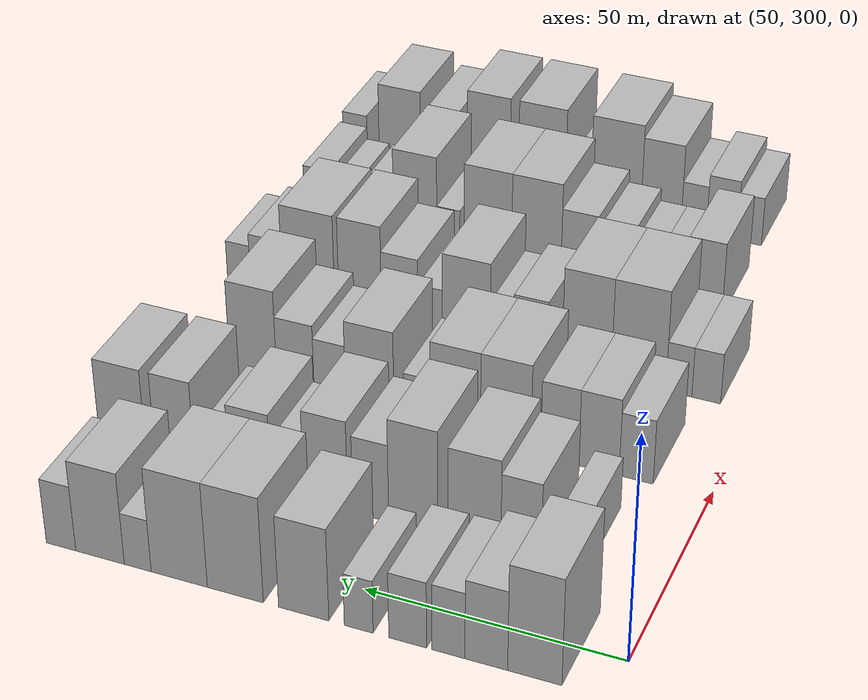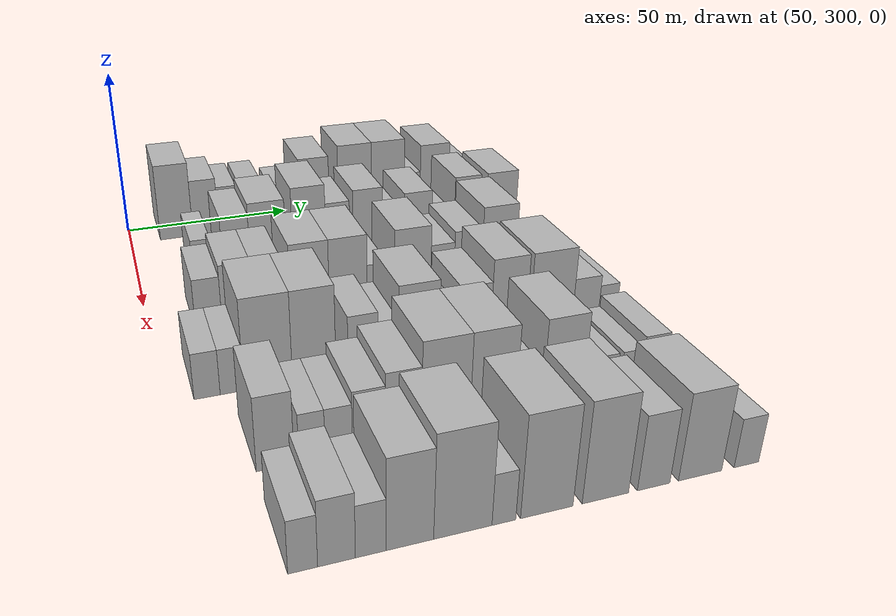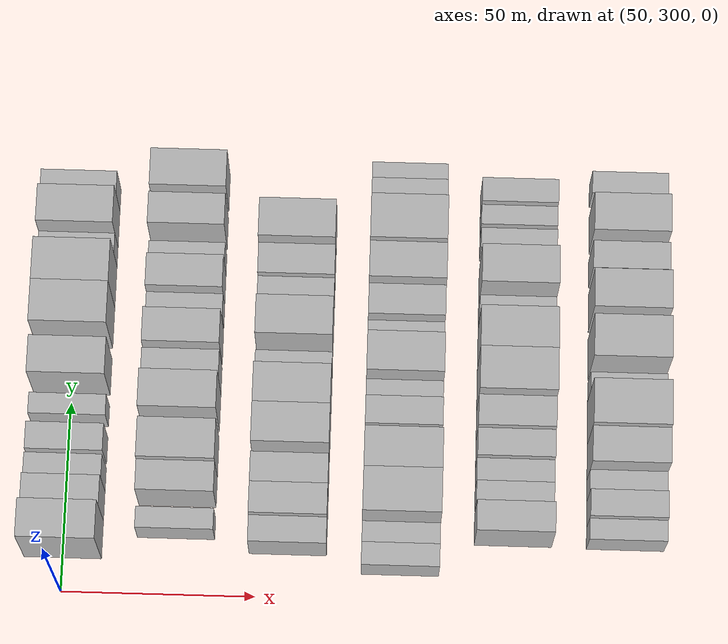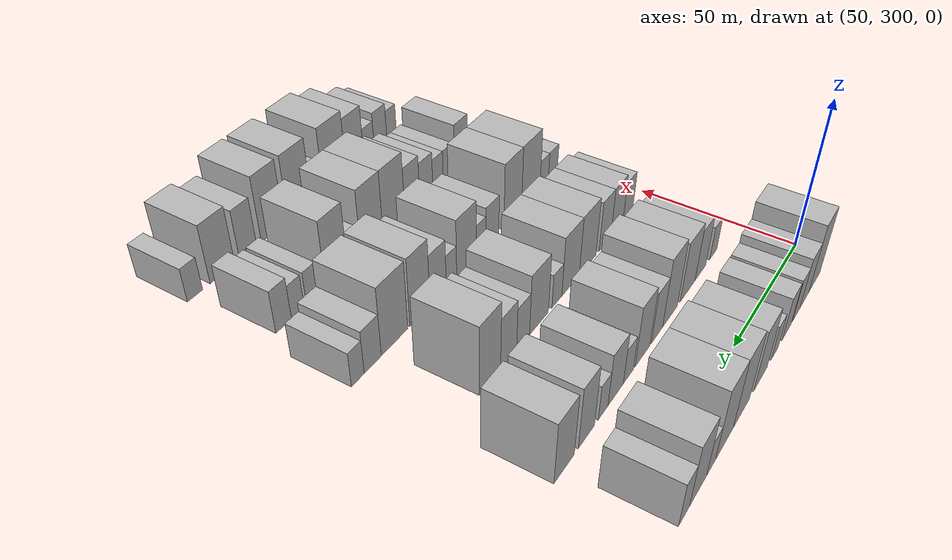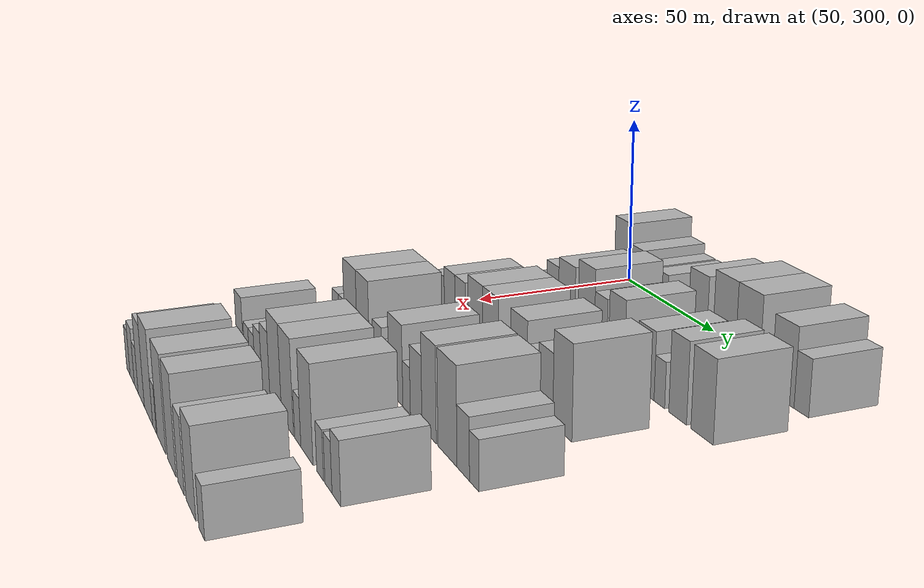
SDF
<sdf version="1.6">
 <world name="default">
  <model name="building_85">
   <static>1</static>
   <pose>50.0000 313.7733 0 0.000000 0.000000 0.000000</pose>
   <link name="link">
    <pose>0 0 12.00 0 0 0</pose>
    <collision name="collision"><geometry><box><size>20.0000 9.9659 24.0000</size></box></geometry></collision>
    <visual name="visual">
     <cast_shadows>0</cast_shadows>
     <geometry><box><size>20.0000 9.9659 24.0000</size></box></geometry>
     <material>
      <script>
       <uri>model://HANNAS_wall/materials/scripts</uri>
       <uri>model://HANNAS_wall/materials/textures</uri>
       <name>vrc/HANNAS_wall</name>
      </script>
     </material>
    </visual>
   </link>
  </model>
  <model name="building_86">
   <static>1</static>
   <pose>50.0000 322.7219 0 0.000000 0.000000 0.000000</pose>
   <link name="link">
    <pose>0 0 9.00 0 0 0</pose>
    <collision name="collision"><geometry><box><size>20.0000 7.9313 18.0000</size></box></geometry></collision>
    <visual name="visual">
     <cast_shadows>0</cast_shadows>
     <geometry><box><size>20.0000 7.9313 18.0000</size></box></geometry>
     <material>
      <script>
       <uri>model://HANNAS_wall/materials/scripts</uri>
       <uri>model://HANNAS_wall/materials/textures</uri>
       <name>vrc/HANNAS_wall</name>
      </script>
     </material>
    </visual>
   </link>
  </model>
  <model name="building_87">
   <static>1</static>
   <pose>50.0000 329.7921 0 0.000000 0.000000 0.000000</pose>
   <link name="link">
    <pose>0 0 7.50 0 0 0</pose>
    <collision name="collision"><geometry><box><size>20.0000 6.2091 15.0000</size></box></geometry></collision>
    <visual name="visual">
     <cast_shadows>0</cast_shadows>
     <geometry><box><size>20.0000 6.2091 15.0000</size></box></geometry>
     <material>
      <script>
       <uri>model://HANNAS_wall/materials/scripts</uri>
       <uri>model://HANNAS_wall/materials/textures</uri>
       <name>vrc/HANNAS_wall</name>
      </script>
     </material>
    </visual>
   </link>
  </model>
  <model name="building_88">
   <static>1</static>
   <pose>50.0000 337.4828 0 0.000000 0.000000 0.000000</pose>
   <link name="link">
    <pose>0 0 7.50 0 0 0</pose>
    <collision name="collision"><geometry><box><size>20.0000 7.1724 15.0000</size></box></geometry></collision>
    <visual name="visual">
     <cast_shadows>0</cast_shadows>
     <geometry><box><size>20.0000 7.1724 15.0000</size></box></geometry>
     <material>
      <script>
       <uri>model://HANNAS_wall/materials/scripts</uri>
       <uri>model://HANNAS_wall/materials/textures</uri>
       <name>vrc/HANNAS_wall</name>
      </script>
     </material>
    </visual>
   </link>
  </model>
  <model name="building_89">
   <static>1</static>
   <pose>50.0000 346.8356 0 0.000000 0.000000 0.000000</pose>
   <link name="link">
    <pose>0 0 6.00 0 0 0</pose>
    <collision name="collision"><geometry><box><size>20.0000 5.5331 12.0000</size></box></geometry></collision>
    <visual name="visual">
     <cast_shadows>0</cast_shadows>
     <geometry><box><size>20.0000 5.5331 12.0000</size></box></geometry>
     <material>
      <script>
       <uri>model://HANNAS_wall/materials/scripts</uri>
       <uri>model://HANNAS_wall/materials/textures</uri>
       <name>vrc/HANNAS_wall</name>
      </script>
     </material>
    </visual>
   </link>
  </model>
  <model name="building_90">
   <static>1</static>
   <pose>50.0000 357.5108 0 0.000000 0.000000 0.000000</pose>
   <link name="link">
    <pose>0 0 10.50 0 0 0</pose>
    <collision name="collision"><geometry><box><size>20.0000 9.8174 21.0000</size></box></geometry></collision>
    <visual name="visual">
     <cast_shadows>0</cast_shadows>
     <geometry><box><size>20.0000 9.8174 21.0000</size></box></geometry>
     <material>
      <script>
       <uri>model://HANNAS_wall/materials/scripts</uri>
       <uri>model://HANNAS_wall/materials/textures</uri>
       <name>vrc/HANNAS_wall</name>
      </script>
     </material>
    </visual>
   </link>
  </model>
  <model name="building_91">
   <static>1</static>
   <pose>50.0000 370.9895 0 0.000000 0.000000 0.000000</pose>
   <link name="link">
    <pose>0 0 12.00 0 0 0</pose>
    <collision name="collision"><geometry><box><size>20.0000 11.1399 24.0000</size></box></geometry></collision>
    <visual name="visual">
     <cast_shadows>0</cast_shadows>
     <geometry><box><size>20.0000 11.1399 24.0000</size></box></geometry>
     <material>
      <script>
       <uri>model://HANNAS_wall/materials/scripts</uri>
       <uri>model://HANNAS_wall/materials/textures</uri>
       <name>vrc/HANNAS_wall</name>
      </script>
     </material>
    </visual>
   </link>
  </model>
  <model name="building_92">
   <static>1</static>
   <pose>50.0000 382.2414 0 0.000000 0.000000 0.000000</pose>
   <link name="link">
    <pose>0 0 12.00 0 0 0</pose>
    <collision name="collision"><geometry><box><size>20.0000 11.3639 24.0000</size></box></geometry></collision>
    <visual name="visual">
     <cast_shadows>0</cast_shadows>
     <geometry><box><size>20.0000 11.3639 24.0000</size></box></geometry>
     <material>
      <script>
       <uri>model://HANNAS_wall/materials/scripts</uri>
       <uri>model://HANNAS_wall/materials/textures</uri>
       <name>vrc/HANNAS_wall</name>
      </script>
     </material>
    </visual>
   </link>
  </model>
  <model name="building_93">
   <static>1</static>
   <pose>50.0000 390.6703 0 0.000000 0.000000 0.000000</pose>
   <link name="link">
    <pose>0 0 6.00 0 0 0</pose>
    <collision name="collision"><geometry><box><size>20.0000 5.4940 12.0000</size></box></geometry></collision>
    <visual name="visual">
     <cast_shadows>0</cast_shadows>
     <geometry><box><size>20.0000 5.4940 12.0000</size></box></geometry>
     <material>
      <script>
       <uri>model://HANNAS_wall/materials/scripts</uri>
       <uri>model://HANNAS_wall/materials/textures</uri>
       <name>vrc/HANNAS_wall</name>
      </script>
     </material>
    </visual>
   </link>
  </model>
  <model name="building_94">
   <static>1</static>
   <pose>50.0000 398.4351 0 0.000000 0.000000 0.000000</pose>
   <link name="link">
    <pose>0 0 10.50 0 0 0</pose>
    <collision name="collision"><geometry><box><size>20.0000 10.0357 21.0000</size></box></geometry></collision>
    <visual name="visual">
     <cast_shadows>0</cast_shadows>
     <geometry><box><size>20.0000 10.0357 21.0000</size></box></geometry>
     <material>
      <script>
       <uri>model://HANNAS_wall/materials/scripts</uri>
       <uri>model://HANNAS_wall/materials/textures</uri>
       <name>vrc/HANNAS_wall</name>
      </script>
     </material>
    </visual>
   </link>
  </model>
  <model name="building_95">
   <static>1</static>
   <pose>50.0000 406.5181 0 0.000000 0.000000 0.000000</pose>
   <link name="link">
    <pose>0 0 7.50 0 0 0</pose>
    <collision name="collision"><geometry><box><size>20.0000 6.1302 15.0000</size></box></geometry></collision>
    <visual name="visual">
     <cast_shadows>0</cast_shadows>
     <geometry><box><size>20.0000 6.1302 15.0000</size></box></geometry>
     <material>
      <script>
       <uri>model://HANNAS_wall/materials/scripts</uri>
       <uri>model://HANNAS_wall/materials/textures</uri>
       <name>vrc/HANNAS_wall</name>
      </script>
     </material>
    </visual>
   </link>
  </model>
  <model name="building_201">
   <static>1</static>
   <pose>79.0000 317.4911 0 0.000000 0.000000 0.000000</pose>
   <link name="link">
    <pose>0 0 6.00 0 0 0</pose>
    <collision name="collision"><geometry><box><size>20.0000 5.5257 12.0000</size></box></geometry></collision>
    <visual name="visual">
     <cast_shadows>0</cast_shadows>
     <geometry><box><size>20.0000 5.5257 12.0000</size></box></geometry>
     <material>
      <script>
       <uri>model://HANNAS_wall/materials/scripts</uri>
       <uri>model://HANNAS_wall/materials/textures</uri>
       <name>vrc/HANNAS_wall</name>
      </script>
     </material>
    </visual>
   </link>
  </model>
  <model name="building_202">
   <static>1</static>
   <pose>79.0000 327.2011 0 0.000000 0.000000 0.000000</pose>
   <link name="link">
    <pose>0 0 9.00 0 0 0</pose>
    <collision name="collision"><geometry><box><size>20.0000 7.8943 18.0000</size></box></geometry></collision>
    <visual name="visual">
     <cast_shadows>0</cast_shadows>
     <geometry><box><size>20.0000 7.8943 18.0000</size></box></geometry>
     <material>
      <script>
       <uri>model://HANNAS_wall/materials/scripts</uri>
       <uri>model://HANNAS_wall/materials/textures</uri>
       <name>vrc/HANNAS_wall</name>
      </script>
     </material>
    </visual>
   </link>
  </model>
  <model name="building_203">
   <static>1</static>
   <pose>79.0000 336.3801 0 0.000000 0.000000 0.000000</pose>
   <link name="link">
    <pose>0 0 10.50 0 0 0</pose>
    <collision name="collision"><geometry><box><size>20.0000 10.4638 21.0000</size></box></geometry></collision>
    <visual name="visual">
     <cast_shadows>0</cast_shadows>
     <geometry><box><size>20.0000 10.4638 21.0000</size></box></geometry>
     <material>
      <script>
       <uri>model://HANNAS_wall/materials/scripts</uri>
       <uri>model://HANNAS_wall/materials/textures</uri>
       <name>vrc/HANNAS_wall</name>
      </script>
     </material>
    </visual>
   </link>
  </model>
  <model name="building_204">
   <static>1</static>
   <pose>79.0000 348.5491 0 0.000000 0.000000 0.000000</pose>
   <link name="link">
    <pose>0 0 12.00 0 0 0</pose>
    <collision name="collision"><geometry><box><size>20.0000 9.8742 24.0000</size></box></geometry></collision>
    <visual name="visual">
     <cast_shadows>0</cast_shadows>
     <geometry><box><size>20.0000 9.8742 24.0000</size></box></geometry>
     <material>
      <script>
       <uri>model://HANNAS_wall/materials/scripts</uri>
       <uri>model://HANNAS_wall/materials/textures</uri>
       <name>vrc/HANNAS_wall</name>
      </script>
     </material>
    </visual>
   </link>
  </model>
  <model name="building_205">
   <static>1</static>
   <pose>79.0000 357.1215 0 0.000000 0.000000 0.000000</pose>
   <link name="link">
    <pose>0 0 9.00 0 0 0</pose>
    <collision name="collision"><geometry><box><size>20.0000 7.2706 18.0000</size></box></geometry></collision>
    <visual name="visual">
     <cast_shadows>0</cast_shadows>
     <geometry><box><size>20.0000 7.2706 18.0000</size></box></geometry>
     <material>
      <script>
       <uri>model://HANNAS_wall/materials/scripts</uri>
       <uri>model://HANNAS_wall/materials/textures</uri>
       <name>vrc/HANNAS_wall</name>
      </script>
     </material>
    </visual>
   </link>
  </model>
  <model name="building_206">
   <static>1</static>
   <pose>79.0000 366.2660 0 0.000000 0.000000 0.000000</pose>
   <link name="link">
    <pose>0 0 10.50 0 0 0</pose>
    <collision name="collision"><geometry><box><size>20.0000 9.0186 21.0000</size></box></geometry></collision>
    <visual name="visual">
     <cast_shadows>0</cast_shadows>
     <geometry><box><size>20.0000 9.0186 21.0000</size></box></geometry>
     <material>
      <script>
       <uri>model://HANNAS_wall/materials/scripts</uri>
       <uri>model://HANNAS_wall/materials/textures</uri>
       <name>vrc/HANNAS_wall</name>
      </script>
     </material>
    </visual>
   </link>
  </model>
  <model name="building_207">
   <static>1</static>
   <pose>79.0000 374.7082 0 0.000000 0.000000 0.000000</pose>
   <link name="link">
    <pose>0 0 6.00 0 0 0</pose>
    <collision name="collision"><geometry><box><size>20.0000 5.8657 12.0000</size></box></geometry></collision>
    <visual name="visual">
     <cast_shadows>0</cast_shadows>
     <geometry><box><size>20.0000 5.8657 12.0000</size></box></geometry>
     <material>
      <script>
       <uri>model://HANNAS_wall/materials/scripts</uri>
       <uri>model://HANNAS_wall/materials/textures</uri>
       <name>vrc/HANNAS_wall</name>
      </script>
     </material>
    </visual>
   </link>
  </model>
  <model name="building_208">
   <static>1</static>
   <pose>79.0000 382.0152 0 0.000000 0.000000 0.000000</pose>
   <link name="link">
    <pose>0 0 9.00 0 0 0</pose>
    <collision name="collision"><geometry><box><size>20.0000 8.7483 18.0000</size></box></geometry></collision>
    <visual name="visual">
     <cast_shadows>0</cast_shadows>
     <geometry><box><size>20.0000 8.7483 18.0000</size></box></geometry>
     <material>
      <script>
       <uri>model://HANNAS_wall/materials/scripts</uri>
       <uri>model://HANNAS_wall/materials/textures</uri>
       <name>vrc/HANNAS_wall</name>
      </script>
     </material>
    </visual>
   </link>
  </model>
  <model name="building_209">
   <static>1</static>
   <pose>79.0000 389.0328 0 0.000000 0.000000 0.000000</pose>
   <link name="link">
    <pose>0 0 6.00 0 0 0</pose>
    <collision name="collision"><geometry><box><size>20.0000 5.2871 12.0000</size></box></geometry></collision>
    <visual name="visual">
     <cast_shadows>0</cast_shadows>
     <geometry><box><size>20.0000 5.2871 12.0000</size></box></geometry>
     <material>
      <script>
       <uri>model://HANNAS_wall/materials/scripts</uri>
       <uri>model://HANNAS_wall/materials/textures</uri>
       <name>vrc/HANNAS_wall</name>
      </script>
     </material>
    </visual>
   </link>
  </model>
  <model name="building_210">
   <static>1</static>
   <pose>79.0000 397.9119 0 0.000000 0.000000 0.000000</pose>
   <link name="link">
    <pose>0 0 10.50 0 0 0</pose>
    <collision name="collision"><geometry><box><size>20.0000 8.4711 21.0000</size></box></geometry></collision>
    <visual name="visual">
     <cast_shadows>0</cast_shadows>
     <geometry><box><size>20.0000 8.4711 21.0000</size></box></geometry>
     <material>
      <script>
       <uri>model://HANNAS_wall/materials/scripts</uri>
       <uri>model://HANNAS_wall/materials/textures</uri>
       <name>vrc/HANNAS_wall</name>
      </script>
     </material>
    </visual>
   </link>
  </model>
  <model name="building_211">
   <static>1</static>
   <pose>79.0000 409.1564 0 0.000000 0.000000 0.000000</pose>
   <link name="link">
    <pose>0 0 10.50 0 0 0</pose>
    <collision name="collision"><geometry><box><size>20.0000 10.0179 21.0000</size></box></geometry></collision>
    <visual name="visual">
     <cast_shadows>0</cast_shadows>
     <geometry><box><size>20.0000 10.0179 21.0000</size></box></geometry>
     <material>
      <script>
       <uri>model://HANNAS_wall/materials/scripts</uri>
       <uri>model://HANNAS_wall/materials/textures</uri>
       <name>vrc/HANNAS_wall</name>
      </script>
     </material>
    </visual>
   </link>
  </model>
  <model name="building_309">
   <static>1</static>
   <pose>108.0000 314.7132 0 0.000000 0.000000 0.000000</pose>
   <link name="link">
    <pose>0 0 7.50 0 0 0</pose>
    <collision name="collision"><geometry><box><size>20.0000 6.8224 15.0000</size></box></geometry></collision>
    <visual name="visual">
     <cast_shadows>0</cast_shadows>
     <geometry><box><size>20.0000 6.8224 15.0000</size></box></geometry>
     <material>
      <script>
       <uri>model://HANNAS_wall/materials/scripts</uri>
       <uri>model://HANNAS_wall/materials/textures</uri>
       <name>vrc/HANNAS_wall</name>
      </script>
     </material>
    </visual>
   </link>
  </model>
  <model name="building_310">
   <static>1</static>
   <pose>108.0000 322.2044 0 0.000000 0.000000 0.000000</pose>
   <link name="link">
    <pose>0 0 9.00 0 0 0</pose>
    <collision name="collision"><geometry><box><size>20.0000 8.1599 18.0000</size></box></geometry></collision>
    <visual name="visual">
     <cast_shadows>0</cast_shadows>
     <geometry><box><size>20.0000 8.1599 18.0000</size></box></geometry>
     <material>
      <script>
       <uri>model://HANNAS_wall/materials/scripts</uri>
       <uri>model://HANNAS_wall/materials/textures</uri>
       <name>vrc/HANNAS_wall</name>
      </script>
     </material>
    </visual>
   </link>
  </model>
  <model name="building_311">
   <static>1</static>
   <pose>108.0000 330.1767 0 0.000000 0.000000 0.000000</pose>
   <link name="link">
    <pose>0 0 9.00 0 0 0</pose>
    <collision name="collision"><geometry><box><size>20.0000 7.7847 18.0000</size></box></geometry></collision>
    <visual name="visual">
     <cast_shadows>0</cast_shadows>
     <geometry><box><size>20.0000 7.7847 18.0000</size></box></geometry>
     <material>
      <script>
       <uri>model://HANNAS_wall/materials/scripts</uri>
       <uri>model://HANNAS_wall/materials/textures</uri>
       <name>vrc/HANNAS_wall</name>
      </script>
     </material>
    </visual>
   </link>
  </model>
  <model name="building_312">
   <static>1</static>
   <pose>108.0000 341.3030 0 0.000000 0.000000 0.000000</pose>
   <link name="link">
    <pose>0 0 10.50 0 0 0</pose>
    <collision name="collision"><geometry><box><size>20.0000 10.4679 21.0000</size></box></geometry></collision>
    <visual name="visual">
     <cast_shadows>0</cast_shadows>
     <geometry><box><size>20.0000 10.4679 21.0000</size></box></geometry>
     <material>
      <script>
       <uri>model://HANNAS_wall/materials/scripts</uri>
       <uri>model://HANNAS_wall/materials/textures</uri>
       <name>vrc/HANNAS_wall</name>
      </script>
     </material>
    </visual>
   </link>
  </model>
  <model name="building_313">
   <static>1</static>
   <pose>108.0000 351.7706 0 0.000000 0.000000 0.000000</pose>
   <link name="link">
    <pose>0 0 10.50 0 0 0</pose>
    <collision name="collision"><geometry><box><size>20.0000 10.4673 21.0000</size></box></geometry></collision>
    <visual name="visual">
     <cast_shadows>0</cast_shadows>
     <geometry><box><size>20.0000 10.4673 21.0000</size></box></geometry>
     <material>
      <script>
       <uri>model://HANNAS_wall/materials/scripts</uri>
       <uri>model://HANNAS_wall/materials/textures</uri>
       <name>vrc/HANNAS_wall</name>
      </script>
     </material>
    </visual>
   </link>
  </model>
  <model name="building_314">
   <static>1</static>
   <pose>108.0000 359.8651 0 0.000000 0.000000 0.000000</pose>
   <link name="link">
    <pose>0 0 6.00 0 0 0</pose>
    <collision name="collision"><geometry><box><size>20.0000 5.7216 12.0000</size></box></geometry></collision>
    <visual name="visual">
     <cast_shadows>0</cast_shadows>
     <geometry><box><size>20.0000 5.7216 12.0000</size></box></geometry>
     <material>
      <script>
       <uri>model://HANNAS_wall/materials/scripts</uri>
       <uri>model://HANNAS_wall/materials/textures</uri>
       <name>vrc/HANNAS_wall</name>
      </script>
     </material>
    </visual>
   </link>
  </model>
  <model name="building_315">
   <static>1</static>
   <pose>108.0000 369.9059 0 0.000000 0.000000 0.000000</pose>
   <link name="link">
    <pose>0 0 10.50 0 0 0</pose>
    <collision name="collision"><geometry><box><size>20.0000 10.3601 21.0000</size></box></geometry></collision>
    <visual name="visual">
     <cast_shadows>0</cast_shadows>
     <geometry><box><size>20.0000 10.3601 21.0000</size></box></geometry>
     <material>
      <script>
       <uri>model://HANNAS_wall/materials/scripts</uri>
       <uri>model://HANNAS_wall/materials/textures</uri>
       <name>vrc/HANNAS_wall</name>
      </script>
     </material>
    </visual>
   </link>
  </model>
  <model name="building_316">
   <static>1</static>
   <pose>108.0000 378.4851 0 0.000000 0.000000 0.000000</pose>
   <link name="link">
    <pose>0 0 7.50 0 0 0</pose>
    <collision name="collision"><geometry><box><size>20.0000 6.7984 15.0000</size></box></geometry></collision>
    <visual name="visual">
     <cast_shadows>0</cast_shadows>
     <geometry><box><size>20.0000 6.7984 15.0000</size></box></geometry>
     <material>
      <script>
       <uri>model://HANNAS_wall/materials/scripts</uri>
       <uri>model://HANNAS_wall/materials/textures</uri>
       <name>vrc/HANNAS_wall</name>
      </script>
     </material>
    </visual>
   </link>
  </model>
  <model name="building_317">
   <static>1</static>
   <pose>108.0000 385.9615 0 0.000000 0.000000 0.000000</pose>
   <link name="link">
    <pose>0 0 9.00 0 0 0</pose>
    <collision name="collision"><geometry><box><size>20.0000 8.1544 18.0000</size></box></geometry></collision>
    <visual name="visual">
     <cast_shadows>0</cast_shadows>
     <geometry><box><size>20.0000 8.1544 18.0000</size></box></geometry>
     <material>
      <script>
       <uri>model://HANNAS_wall/materials/scripts</uri>
       <uri>model://HANNAS_wall/materials/textures</uri>
       <name>vrc/HANNAS_wall</name>
      </script>
     </material>
    </visual>
   </link>
  </model>
  <model name="building_318">
   <static>1</static>
   <pose>108.0000 395.2019 0 0.000000 0.000000 0.000000</pose>
   <link name="link">
    <pose>0 0 12.00 0 0 0</pose>
    <collision name="collision"><geometry><box><size>20.0000 10.3264 24.0000</size></box></geometry></collision>
    <visual name="visual">
     <cast_shadows>0</cast_shadows>
     <geometry><box><size>20.0000 10.3264 24.0000</size></box></geometry>
     <material>
      <script>
       <uri>model://HANNAS_wall/materials/scripts</uri>
       <uri>model://HANNAS_wall/materials/textures</uri>
       <name>vrc/HANNAS_wall</name>
      </script>
     </material>
    </visual>
   </link>
  </model>
  <model name="building_420">
   <static>1</static>
   <pose>137.0000 309.7142 0 0.000000 0.000000 0.000000</pose>
   <link name="link">
    <pose>0 0 6.00 0 0 0</pose>
    <collision name="collision"><geometry><box><size>20.0000 5.9707 12.0000</size></box></geometry></collision>
    <visual name="visual">
     <cast_shadows>0</cast_shadows>
     <geometry><box><size>20.0000 5.9707 12.0000</size></box></geometry>
     <material>
      <script>
       <uri>model://HANNAS_wall/materials/scripts</uri>
       <uri>model://HANNAS_wall/materials/textures</uri>
       <name>vrc/HANNAS_wall</name>
      </script>
     </material>
    </visual>
   </link>
  </model>
  <model name="building_421">
   <static>1</static>
   <pose>137.0000 315.4198 0 0.000000 0.000000 0.000000</pose>
   <link name="link">
    <pose>0 0 6.00 0 0 0</pose>
    <collision name="collision"><geometry><box><size>20.0000 5.4404 12.0000</size></box></geometry></collision>
    <visual name="visual">
     <cast_shadows>0</cast_shadows>
     <geometry><box><size>20.0000 5.4404 12.0000</size></box></geometry>
     <material>
      <script>
       <uri>model://HANNAS_wall/materials/scripts</uri>
       <uri>model://HANNAS_wall/materials/textures</uri>
       <name>vrc/HANNAS_wall</name>
      </script>
     </material>
    </visual>
   </link>
  </model>
  <model name="building_422">
   <static>1</static>
   <pose>137.0000 323.8924 0 0.000000 0.000000 0.000000</pose>
   <link name="link">
    <pose>0 0 12.00 0 0 0</pose>
    <collision name="collision"><geometry><box><size>20.0000 11.5048 24.0000</size></box></geometry></collision>
    <visual name="visual">
     <cast_shadows>0</cast_shadows>
     <geometry><box><size>20.0000 11.5048 24.0000</size></box></geometry>
     <material>
      <script>
       <uri>model://HANNAS_wall/materials/scripts</uri>
       <uri>model://HANNAS_wall/materials/textures</uri>
       <name>vrc/HANNAS_wall</name>
      </script>
     </material>
    </visual>
   </link>
  </model>
  <model name="building_423">
   <static>1</static>
   <pose>137.0000 334.9140 0 0.000000 0.000000 0.000000</pose>
   <link name="link">
    <pose>0 0 12.00 0 0 0</pose>
    <collision name="collision"><geometry><box><size>20.0000 10.5384 24.0000</size></box></geometry></collision>
    <visual name="visual">
     <cast_shadows>0</cast_shadows>
     <geometry><box><size>20.0000 10.5384 24.0000</size></box></geometry>
     <material>
      <script>
       <uri>model://HANNAS_wall/materials/scripts</uri>
       <uri>model://HANNAS_wall/materials/textures</uri>
       <name>vrc/HANNAS_wall</name>
      </script>
     </material>
    </visual>
   </link>
  </model>
  <model name="building_424">
   <static>1</static>
   <pose>137.0000 346.9109 0 0.000000 0.000000 0.000000</pose>
   <link name="link">
    <pose>0 0 7.50 0 0 0</pose>
    <collision name="collision"><geometry><box><size>20.0000 7.4554 15.0000</size></box></geometry></collision>
    <visual name="visual">
     <cast_shadows>0</cast_shadows>
     <geometry><box><size>20.0000 7.4554 15.0000</size></box></geometry>
     <material>
      <script>
       <uri>model://HANNAS_wall/materials/scripts</uri>
       <uri>model://HANNAS_wall/materials/textures</uri>
       <name>vrc/HANNAS_wall</name>
      </script>
     </material>
    </visual>
   </link>
  </model>
  <model name="building_425">
   <static>1</static>
   <pose>137.0000 353.1987 0 0.000000 0.000000 0.000000</pose>
   <link name="link">
    <pose>0 0 6.00 0 0 0</pose>
    <collision name="collision"><geometry><box><size>20.0000 5.1203 12.0000</size></box></geometry></collision>
    <visual name="visual">
     <cast_shadows>0</cast_shadows>
     <geometry><box><size>20.0000 5.1203 12.0000</size></box></geometry>
     <material>
      <script>
       <uri>model://HANNAS_wall/materials/scripts</uri>
       <uri>model://HANNAS_wall/materials/textures</uri>
       <name>vrc/HANNAS_wall</name>
      </script>
     </material>
    </visual>
   </link>
  </model>
  <model name="building_426">
   <static>1</static>
   <pose>137.0000 361.0071 0 0.000000 0.000000 0.000000</pose>
   <link name="link">
    <pose>0 0 10.50 0 0 0</pose>
    <collision name="collision"><geometry><box><size>20.0000 10.4965 21.0000</size></box></geometry></collision>
    <visual name="visual">
     <cast_shadows>0</cast_shadows>
     <geometry><box><size>20.0000 10.4965 21.0000</size></box></geometry>
     <material>
      <script>
       <uri>model://HANNAS_wall/materials/scripts</uri>
       <uri>model://HANNAS_wall/materials/textures</uri>
       <name>vrc/HANNAS_wall</name>
      </script>
     </material>
    </visual>
   </link>
  </model>
  <model name="building_427">
   <static>1</static>
   <pose>137.0000 368.9597 0 0.000000 0.000000 0.000000</pose>
   <link name="link">
    <pose>0 0 6.00 0 0 0</pose>
    <collision name="collision"><geometry><box><size>20.0000 5.4088 12.0000</size></box></geometry></collision>
    <visual name="visual">
     <cast_shadows>0</cast_shadows>
     <geometry><box><size>20.0000 5.4088 12.0000</size></box></geometry>
     <material>
      <script>
       <uri>model://HANNAS_wall/materials/scripts</uri>
       <uri>model://HANNAS_wall/materials/textures</uri>
       <name>vrc/HANNAS_wall</name>
      </script>
     </material>
    </visual>
   </link>
  </model>
  <model name="building_428">
   <static>1</static>
   <pose>137.0000 375.7532 0 0.000000 0.000000 0.000000</pose>
   <link name="link">
    <pose>0 0 9.00 0 0 0</pose>
    <collision name="collision"><geometry><box><size>20.0000 8.1783 18.0000</size></box></geometry></collision>
    <visual name="visual">
     <cast_shadows>0</cast_shadows>
     <geometry><box><size>20.0000 8.1783 18.0000</size></box></geometry>
     <material>
      <script>
       <uri>model://HANNAS_wall/materials/scripts</uri>
       <uri>model://HANNAS_wall/materials/textures</uri>
       <name>vrc/HANNAS_wall</name>
      </script>
     </material>
    </visual>
   </link>
  </model>
  <model name="building_429">
   <static>1</static>
   <pose>137.0000 384.6444 0 0.000000 0.000000 0.000000</pose>
   <link name="link">
    <pose>0 0 12.00 0 0 0</pose>
    <collision name="collision"><geometry><box><size>20.0000 9.6041 24.0000</size></box></geometry></collision>
    <visual name="visual">
     <cast_shadows>0</cast_shadows>
     <geometry><box><size>20.0000 9.6041 24.0000</size></box></geometry>
     <material>
      <script>
       <uri>model://HANNAS_wall/materials/scripts</uri>
       <uri>model://HANNAS_wall/materials/textures</uri>
       <name>vrc/HANNAS_wall</name>
      </script>
     </material>
    </visual>
   </link>
  </model>
  <model name="building_430">
   <static>1</static>
   <pose>137.0000 396.4324 0 0.000000 0.000000 0.000000</pose>
   <link name="link">
    <pose>0 0 12.00 0 0 0</pose>
    <collision name="collision"><geometry><box><size>20.0000 11.9718 24.0000</size></box></geometry></collision>
    <visual name="visual">
     <cast_shadows>0</cast_shadows>
     <geometry><box><size>20.0000 11.9718 24.0000</size></box></geometry>
     <material>
      <script>
       <uri>model://HANNAS_wall/materials/scripts</uri>
       <uri>model://HANNAS_wall/materials/textures</uri>
       <name>vrc/HANNAS_wall</name>
      </script>
     </material>
    </visual>
   </link>
  </model>
  <model name="building_431">
   <static>1</static>
   <pose>137.0000 406.1362 0 0.000000 0.000000 0.000000</pose>
   <link name="link">
    <pose>0 0 7.50 0 0 0</pose>
    <collision name="collision"><geometry><box><size>20.0000 7.4359 15.0000</size></box></geometry></collision>
    <visual name="visual">
     <cast_shadows>0</cast_shadows>
     <geometry><box><size>20.0000 7.4359 15.0000</size></box></geometry>
     <material>
      <script>
       <uri>model://HANNAS_wall/materials/scripts</uri>
       <uri>model://HANNAS_wall/materials/textures</uri>
       <name>vrc/HANNAS_wall</name>
      </script>
     </material>
    </visual>
   </link>
  </model>
  <model name="building_432">
   <static>1</static>
   <pose>137.0000 412.5391 0 0.000000 0.000000 0.000000</pose>
   <link name="link">
    <pose>0 0 6.00 0 0 0</pose>
    <collision name="collision"><geometry><box><size>20.0000 5.3698 12.0000</size></box></geometry></collision>
    <visual name="visual">
     <cast_shadows>0</cast_shadows>
     <geometry><box><size>20.0000 5.3698 12.0000</size></box></geometry>
     <material>
      <script>
       <uri>model://HANNAS_wall/materials/scripts</uri>
       <uri>model://HANNAS_wall/materials/textures</uri>
       <name>vrc/HANNAS_wall</name>
      </script>
     </material>
    </visual>
   </link>
  </model>
  <model name="building_541">
   <static>1</static>
   <pose>166.0000 319.1756 0 0.000000 0.000000 0.000000</pose>
   <link name="link">
    <pose>0 0 9.00 0 0 0</pose>
    <collision name="collision"><geometry><box><size>20.0000 7.9047 18.0000</size></box></geometry></collision>
    <visual name="visual">
     <cast_shadows>0</cast_shadows>
     <geometry><box><size>20.0000 7.9047 18.0000</size></box></geometry>
     <material>
      <script>
       <uri>model://HANNAS_wall/materials/scripts</uri>
       <uri>model://HANNAS_wall/materials/textures</uri>
       <name>vrc/HANNAS_wall</name>
      </script>
     </material>
    </visual>
   </link>
  </model>
  <model name="building_542">
   <static>1</static>
   <pose>166.0000 326.9095 0 0.000000 0.000000 0.000000</pose>
   <link name="link">
    <pose>0 0 6.00 0 0 0</pose>
    <collision name="collision"><geometry><box><size>20.0000 5.5630 12.0000</size></box></geometry></collision>
    <visual name="visual">
     <cast_shadows>0</cast_shadows>
     <geometry><box><size>20.0000 5.5630 12.0000</size></box></geometry>
     <material>
      <script>
       <uri>model://HANNAS_wall/materials/scripts</uri>
       <uri>model://HANNAS_wall/materials/textures</uri>
       <name>vrc/HANNAS_wall</name>
      </script>
     </material>
    </visual>
   </link>
  </model>
  <model name="building_543">
   <static>1</static>
   <pose>166.0000 332.6408 0 0.000000 0.000000 0.000000</pose>
   <link name="link">
    <pose>0 0 6.00 0 0 0</pose>
    <collision name="collision"><geometry><box><size>20.0000 5.8997 12.0000</size></box></geometry></collision>
    <visual name="visual">
     <cast_shadows>0</cast_shadows>
     <geometry><box><size>20.0000 5.8997 12.0000</size></box></geometry>
     <material>
      <script>
       <uri>model://HANNAS_wall/materials/scripts</uri>
       <uri>model://HANNAS_wall/materials/textures</uri>
       <name>vrc/HANNAS_wall</name>
      </script>
     </material>
    </visual>
   </link>
  </model>
  <model name="building_544">
   <static>1</static>
   <pose>166.0000 339.2122 0 0.000000 0.000000 0.000000</pose>
   <link name="link">
    <pose>0 0 7.50 0 0 0</pose>
    <collision name="collision"><geometry><box><size>20.0000 7.2430 15.0000</size></box></geometry></collision>
    <visual name="visual">
     <cast_shadows>0</cast_shadows>
     <geometry><box><size>20.0000 7.2430 15.0000</size></box></geometry>
     <material>
      <script>
       <uri>model://HANNAS_wall/materials/scripts</uri>
       <uri>model://HANNAS_wall/materials/textures</uri>
       <name>vrc/HANNAS_wall</name>
      </script>
     </material>
    </visual>
   </link>
  </model>
  <model name="building_545">
   <static>1</static>
   <pose>166.0000 346.8603 0 0.000000 0.000000 0.000000</pose>
   <link name="link">
    <pose>0 0 9.00 0 0 0</pose>
    <collision name="collision"><geometry><box><size>20.0000 8.0533 18.0000</size></box></geometry></collision>
    <visual name="visual">
     <cast_shadows>0</cast_shadows>
     <geometry><box><size>20.0000 8.0533 18.0000</size></box></geometry>
     <material>
      <script>
       <uri>model://HANNAS_wall/materials/scripts</uri>
       <uri>model://HANNAS_wall/materials/textures</uri>
       <name>vrc/HANNAS_wall</name>
      </script>
     </material>
    </visual>
   </link>
  </model>
  <model name="building_546">
   <static>1</static>
   <pose>166.0000 356.5032 0 0.000000 0.000000 0.000000</pose>
   <link name="link">
    <pose>0 0 12.00 0 0 0</pose>
    <collision name="collision"><geometry><box><size>20.0000 11.2326 24.0000</size></box></geometry></collision>
    <visual name="visual">
     <cast_shadows>0</cast_shadows>
     <geometry><box><size>20.0000 11.2326 24.0000</size></box></geometry>
     <material>
      <script>
       <uri>model://HANNAS_wall/materials/scripts</uri>
       <uri>model://HANNAS_wall/materials/textures</uri>
       <name>vrc/HANNAS_wall</name>
      </script>
     </material>
    </visual>
   </link>
  </model>
  <model name="building_547">
   <static>1</static>
   <pose>166.0000 367.5504 0 0.000000 0.000000 0.000000</pose>
   <link name="link">
    <pose>0 0 12.00 0 0 0</pose>
    <collision name="collision"><geometry><box><size>20.0000 10.8618 24.0000</size></box></geometry></collision>
    <visual name="visual">
     <cast_shadows>0</cast_shadows>
     <geometry><box><size>20.0000 10.8618 24.0000</size></box></geometry>
     <material>
      <script>
       <uri>model://HANNAS_wall/materials/scripts</uri>
       <uri>model://HANNAS_wall/materials/textures</uri>
       <name>vrc/HANNAS_wall</name>
      </script>
     </material>
    </visual>
   </link>
  </model>
  <model name="building_548">
   <static>1</static>
   <pose>166.0000 376.6608 0 0.000000 0.000000 0.000000</pose>
   <link name="link">
    <pose>0 0 6.00 0 0 0</pose>
    <collision name="collision"><geometry><box><size>20.0000 5.3589 12.0000</size></box></geometry></collision>
    <visual name="visual">
     <cast_shadows>0</cast_shadows>
     <geometry><box><size>20.0000 5.3589 12.0000</size></box></geometry>
     <material>
      <script>
       <uri>model://HANNAS_wall/materials/scripts</uri>
       <uri>model://HANNAS_wall/materials/textures</uri>
       <name>vrc/HANNAS_wall</name>
      </script>
     </material>
    </visual>
   </link>
  </model>
  <model name="building_549">
   <static>1</static>
   <pose>166.0000 384.4036 0 0.000000 0.000000 0.000000</pose>
   <link name="link">
    <pose>0 0 12.00 0 0 0</pose>
    <collision name="collision"><geometry><box><size>20.0000 10.1269 24.0000</size></box></geometry></collision>
    <visual name="visual">
     <cast_shadows>0</cast_shadows>
     <geometry><box><size>20.0000 10.1269 24.0000</size></box></geometry>
     <material>
      <script>
       <uri>model://HANNAS_wall/materials/scripts</uri>
       <uri>model://HANNAS_wall/materials/textures</uri>
       <name>vrc/HANNAS_wall</name>
      </script>
     </material>
    </visual>
   </link>
  </model>
  <model name="building_550">
   <static>1</static>
   <pose>166.0000 395.1559 0 0.000000 0.000000 0.000000</pose>
   <link name="link">
    <pose>0 0 6.00 0 0 0</pose>
    <collision name="collision"><geometry><box><size>20.0000 5.3776 12.0000</size></box></geometry></collision>
    <visual name="visual">
     <cast_shadows>0</cast_shadows>
     <geometry><box><size>20.0000 5.3776 12.0000</size></box></geometry>
     <material>
      <script>
       <uri>model://HANNAS_wall/materials/scripts</uri>
       <uri>model://HANNAS_wall/materials/textures</uri>
       <name>vrc/HANNAS_wall</name>
      </script>
     </material>
    </visual>
   </link>
  </model>
  <model name="building_551">
   <static>1</static>
   <pose>166.0000 401.5388 0 0.000000 0.000000 0.000000</pose>
   <link name="link">
    <pose>0 0 6.00 0 0 0</pose>
    <collision name="collision"><geometry><box><size>20.0000 5.3882 12.0000</size></box></geometry></collision>
    <visual name="visual">
     <cast_shadows>0</cast_shadows>
     <geometry><box><size>20.0000 5.3882 12.0000</size></box></geometry>
     <material>
      <script>
       <uri>model://HANNAS_wall/materials/scripts</uri>
       <uri>model://HANNAS_wall/materials/textures</uri>
       <name>vrc/HANNAS_wall</name>
      </script>
     </material>
    </visual>
   </link>
  </model>
  <model name="building_552">
   <static>1</static>
   <pose>166.0000 407.4646 0 0.000000 0.000000 0.000000</pose>
   <link name="link">
    <pose>0 0 7.50 0 0 0</pose>
    <collision name="collision"><geometry><box><size>20.0000 6.4633 15.0000</size></box></geometry></collision>
    <visual name="visual">
     <cast_shadows>0</cast_shadows>
     <geometry><box><size>20.0000 6.4633 15.0000</size></box></geometry>
     <material>
      <script>
       <uri>model://HANNAS_wall/materials/scripts</uri>
       <uri>model://HANNAS_wall/materials/textures</uri>
       <name>vrc/HANNAS_wall</name>
      </script>
     </material>
    </visual>
   </link>
  </model>
  <model name="building_655">
   <static>1</static>
   <pose>195.0000 317.7595 0 0.000000 0.000000 0.000000</pose>
   <link name="link">
    <pose>0 0 6.00 0 0 0</pose>
    <collision name="collision"><geometry><box><size>20.0000 5.4748 12.0000</size></box></geometry></collision>
    <visual name="visual">
     <cast_shadows>0</cast_shadows>
     <geometry><box><size>20.0000 5.4748 12.0000</size></box></geometry>
     <material>
      <script>
       <uri>model://HANNAS_wall/materials/scripts</uri>
       <uri>model://HANNAS_wall/materials/textures</uri>
       <name>vrc/HANNAS_wall</name>
      </script>
     </material>
    </visual>
   </link>
  </model>
  <model name="building_656">
   <static>1</static>
   <pose>195.0000 324.0054 0 0.000000 0.000000 0.000000</pose>
   <link name="link">
    <pose>0 0 7.50 0 0 0</pose>
    <collision name="collision"><geometry><box><size>20.0000 7.0169 15.0000</size></box></geometry></collision>
    <visual name="visual">
     <cast_shadows>0</cast_shadows>
     <geometry><box><size>20.0000 7.0169 15.0000</size></box></geometry>
     <material>
      <script>
       <uri>model://HANNAS_wall/materials/scripts</uri>
       <uri>model://HANNAS_wall/materials/textures</uri>
       <name>vrc/HANNAS_wall</name>
      </script>
     </material>
    </visual>
   </link>
  </model>
  <model name="building_657">
   <static>1</static>
   <pose>195.0000 330.4174 0 0.000000 0.000000 0.000000</pose>
   <link name="link">
    <pose>0 0 6.00 0 0 0</pose>
    <collision name="collision"><geometry><box><size>20.0000 5.8071 12.0000</size></box></geometry></collision>
    <visual name="visual">
     <cast_shadows>0</cast_shadows>
     <geometry><box><size>20.0000 5.8071 12.0000</size></box></geometry>
     <material>
      <script>
       <uri>model://HANNAS_wall/materials/scripts</uri>
       <uri>model://HANNAS_wall/materials/textures</uri>
       <name>vrc/HANNAS_wall</name>
      </script>
     </material>
    </visual>
   </link>
  </model>
  <model name="building_658">
   <static>1</static>
   <pose>195.0000 337.9789 0 0.000000 0.000000 0.000000</pose>
   <link name="link">
    <pose>0 0 10.50 0 0 0</pose>
    <collision name="collision"><geometry><box><size>20.0000 9.3159 21.0000</size></box></geometry></collision>
    <visual name="visual">
     <cast_shadows>0</cast_shadows>
     <geometry><box><size>20.0000 9.3159 21.0000</size></box></geometry>
     <material>
      <script>
       <uri>model://HANNAS_wall/materials/scripts</uri>
       <uri>model://HANNAS_wall/materials/textures</uri>
       <name>vrc/HANNAS_wall</name>
      </script>
     </material>
    </visual>
   </link>
  </model>
  <model name="building_659">
   <static>1</static>
   <pose>195.0000 348.5192 0 0.000000 0.000000 0.000000</pose>
   <link name="link">
    <pose>0 0 12.00 0 0 0</pose>
    <collision name="collision"><geometry><box><size>20.0000 11.7645 24.0000</size></box></geometry></collision>
    <visual name="visual">
     <cast_shadows>0</cast_shadows>
     <geometry><box><size>20.0000 11.7645 24.0000</size></box></geometry>
     <material>
      <script>
       <uri>model://HANNAS_wall/materials/scripts</uri>
       <uri>model://HANNAS_wall/materials/textures</uri>
       <name>vrc/HANNAS_wall</name>
      </script>
     </material>
    </visual>
   </link>
  </model>
  <model name="building_660">
   <static>1</static>
   <pose>195.0000 356.8643 0 0.000000 0.000000 0.000000</pose>
   <link name="link">
    <pose>0 0 6.00 0 0 0</pose>
    <collision name="collision"><geometry><box><size>20.0000 4.9258 12.0000</size></box></geometry></collision>
    <visual name="visual">
     <cast_shadows>0</cast_shadows>
     <geometry><box><size>20.0000 4.9258 12.0000</size></box></geometry>
     <material>
      <script>
       <uri>model://HANNAS_wall/materials/scripts</uri>
       <uri>model://HANNAS_wall/materials/textures</uri>
       <name>vrc/HANNAS_wall</name>
      </script>
     </material>
    </visual>
   </link>
  </model>
  <model name="building_661">
   <static>1</static>
   <pose>195.0000 365.9051 0 0.000000 0.000000 0.000000</pose>
   <link name="link">
    <pose>0 0 12.00 0 0 0</pose>
    <collision name="collision"><geometry><box><size>20.0000 11.1558 24.0000</size></box></geometry></collision>
    <visual name="visual">
     <cast_shadows>0</cast_shadows>
     <geometry><box><size>20.0000 11.1558 24.0000</size></box></geometry>
     <material>
      <script>
       <uri>model://HANNAS_wall/materials/scripts</uri>
       <uri>model://HANNAS_wall/materials/textures</uri>
       <name>vrc/HANNAS_wall</name>
      </script>
     </material>
    </visual>
   </link>
  </model>
  <model name="building_662">
   <static>1</static>
   <pose>195.0000 378.6163 0 0.000000 0.000000 0.000000</pose>
   <link name="link">
    <pose>0 0 12.00 0 0 0</pose>
    <collision name="collision"><geometry><box><size>20.0000 10.2667 24.0000</size></box></geometry></collision>
    <visual name="visual">
     <cast_shadows>0</cast_shadows>
     <geometry><box><size>20.0000 10.2667 24.0000</size></box></geometry>
     <material>
      <script>
       <uri>model://HANNAS_wall/materials/scripts</uri>
       <uri>model://HANNAS_wall/materials/textures</uri>
       <name>vrc/HANNAS_wall</name>
      </script>
     </material>
    </visual>
   </link>
  </model>
  <model name="building_663">
   <static>1</static>
   <pose>195.0000 389.4614 0 0.000000 0.000000 0.000000</pose>
   <link name="link">
    <pose>0 0 9.00 0 0 0</pose>
    <collision name="collision"><geometry><box><size>20.0000 7.4234 18.0000</size></box></geometry></collision>
    <visual name="visual">
     <cast_shadows>0</cast_shadows>
     <geometry><box><size>20.0000 7.4234 18.0000</size></box></geometry>
     <material>
      <script>
       <uri>model://HANNAS_wall/materials/scripts</uri>
       <uri>model://HANNAS_wall/materials/textures</uri>
       <name>vrc/HANNAS_wall</name>
      </script>
     </material>
    </visual>
   </link>
  </model>
  <model name="building_664">
   <static>1</static>
   <pose>195.0000 400.2674 0 0.000000 0.000000 0.000000</pose>
   <link name="link">
    <pose>0 0 10.50 0 0 0</pose>
    <collision name="collision"><geometry><box><size>20.0000 10.1885 21.0000</size></box></geometry></collision>
    <visual name="visual">
     <cast_shadows>0</cast_shadows>
     <geometry><box><size>20.0000 10.1885 21.0000</size></box></geometry>
     <material>
      <script>
       <uri>model://HANNAS_wall/materials/scripts</uri>
       <uri>model://HANNAS_wall/materials/textures</uri>
       <name>vrc/HANNAS_wall</name>
      </script>
     </material>
    </visual>
   </link>
  </model>
  <model name="building_665">
   <static>1</static>
   <pose>195.0000 411.3387 0 0.000000 0.000000 0.000000</pose>
   <link name="link">
    <pose>0 0 6.00 0 0 0</pose>
    <collision name="collision"><geometry><box><size>20.0000 5.9542 12.0000</size></box></geometry></collision>
    <visual name="visual">
     <cast_shadows>0</cast_shadows>
     <geometry><box><size>20.0000 5.9542 12.0000</size></box></geometry>
     <material>
      <script>
       <uri>model://HANNAS_wall/materials/scripts</uri>
       <uri>model://HANNAS_wall/materials/textures</uri>
       <name>vrc/HANNAS_wall</name>
      </script>
     </material>
    </visual>
   </link>
  </model>
 </world>
</sdf>
